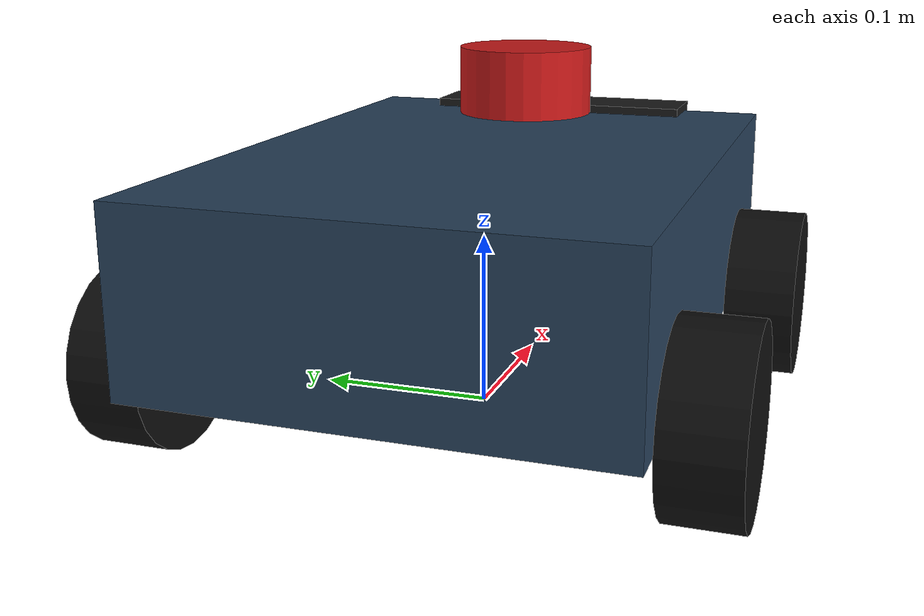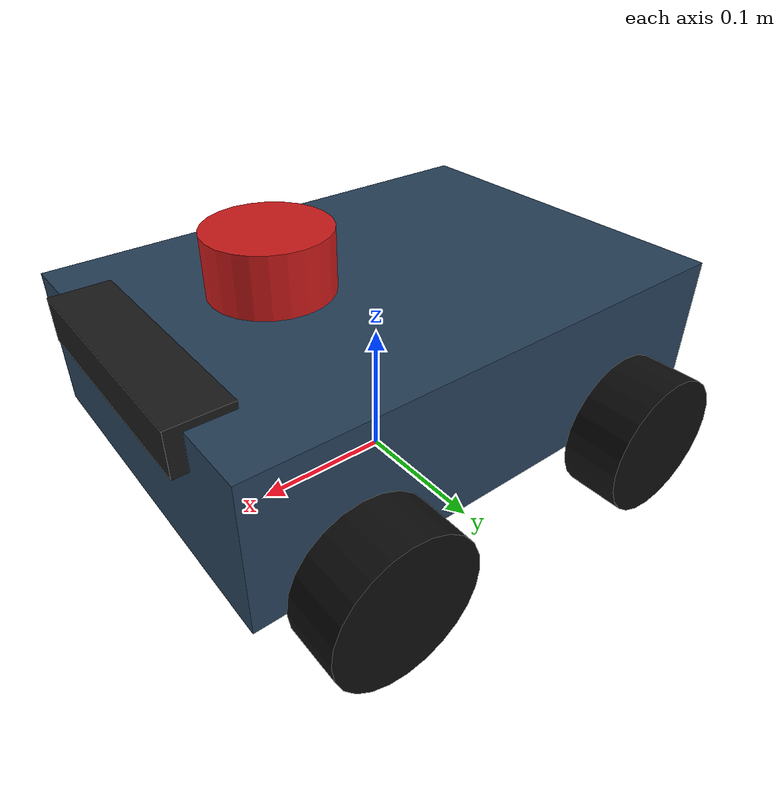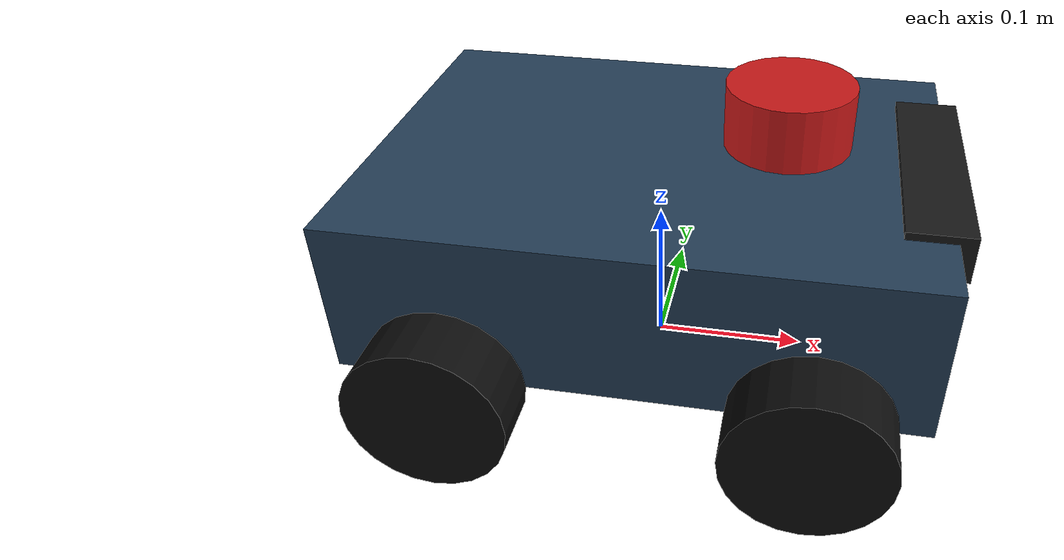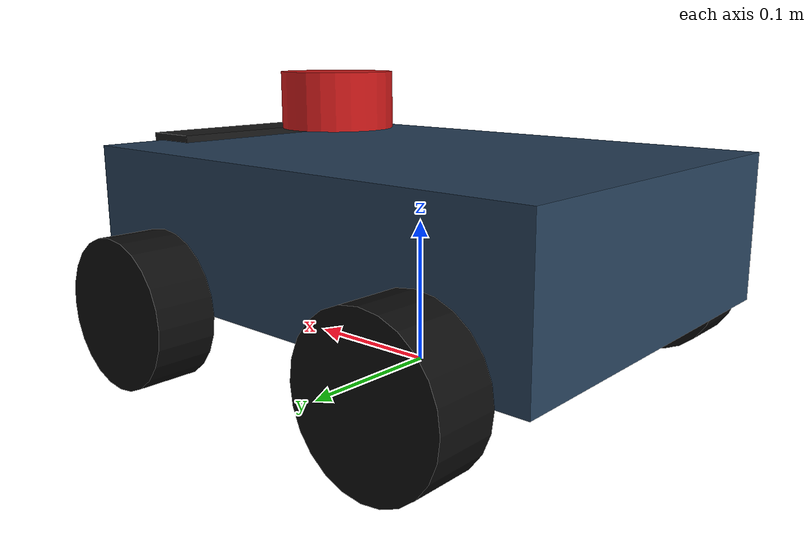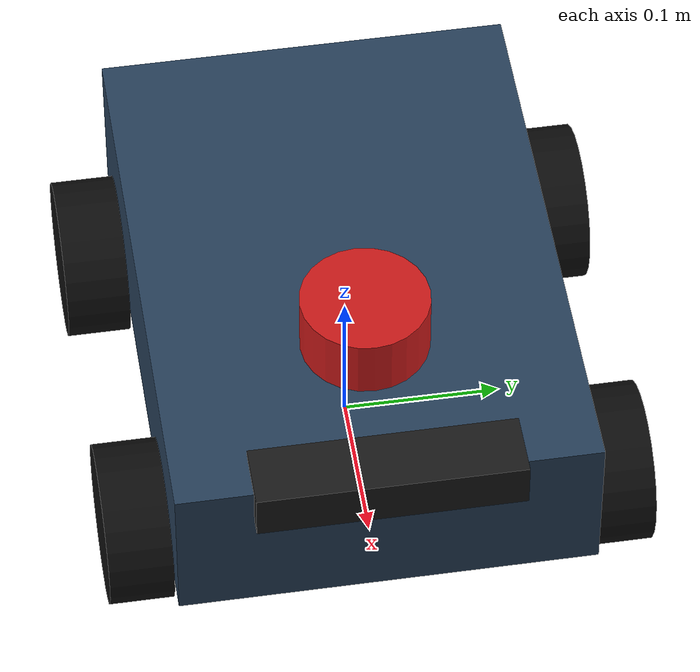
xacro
<?xml version="1.0"?>
<robot xmlns:xacro="http://www.ros.org/wiki/xacro" name="exploration_robot">

  <!-- ================= PROPERTIES ================= -->
  <!-- Dimensi dan massa terinspirasi ROSbot (Bagian 4 Dokumen Perencanaan) -->
  <xacro:property name="chassis_len" value="0.36"/>
  <xacro:property name="chassis_width" value="0.26"/>
  <xacro:property name="chassis_height" value="0.10"/>
  <xacro:property name="chassis_mass" value="3.5"/>

  <xacro:property name="wheel_radius" value="0.05"/>
  <xacro:property name="wheel_width" value="0.04"/>
  <xacro:property name="wheel_mass" value="0.4"/>
  <xacro:property name="wheel_x_offset" value="0.11"/>
  <xacro:property name="wheel_y_offset" value="0.15"/>

  <!-- ================= BASE LINK & FOOTPRINT ================= -->
  <link name="base_footprint"/>

  <joint name="base_footprint_joint" type="fixed">
    <parent link="base_footprint"/>
    <child link="base_link"/>
    <origin xyz="0 0 ${wheel_radius}" rpy="0 0 0"/>
  </joint>

  <link name="base_link">
    <visual>
      <origin xyz="0 0 ${chassis_height/2}" rpy="0 0 0"/>
      <geometry>
        <box size="${chassis_len} ${chassis_width} ${chassis_height}"/>
      </geometry>
      <material name="chassis_mat">
        <color rgba="0.15 0.25 0.35 1.0"/>
      </material>
    </visual>
    <collision>
      <origin xyz="0 0 ${chassis_height/2}" rpy="0 0 0"/>
      <geometry>
        <box size="${chassis_len} ${chassis_width} ${chassis_height}"/>
      </geometry>
    </collision>
    <inertial>
      <origin xyz="0 0 ${chassis_height/2}" rpy="0 0 0"/>
      <mass value="${chassis_mass}"/>
      <inertia ixx="0.022" ixy="0" ixz="0" iyy="0.040" iyz="0" izz="0.057"/>
    </inertial>
  </link>

  <gazebo reference="base_link">
    <material>Gazebo/DarkGrey</material>
  </gazebo>

  <!-- ================= WHEEL MACRO ================= -->
  <xacro:macro name="wheel" params="prefix x_reflect y_reflect">
    <link name="${prefix}_wheel">
      <visual>
        <origin xyz="0 0 0" rpy="${pi/2} 0 0"/>
        <geometry>
          <cylinder radius="${wheel_radius}" length="${wheel_width}"/>
        </geometry>
        <material name="black">
          <color rgba="0.05 0.05 0.05 1.0"/>
        </material>
      </visual>
      <collision>
        <origin xyz="0 0 0" rpy="${pi/2} 0 0"/>
        <geometry>
          <cylinder radius="${wheel_radius}" length="${wheel_width}"/>
        </geometry>
      </collision>
      <inertial>
        <mass value="${wheel_mass}"/>
        <inertia ixx="0.0003" ixy="0" ixz="0" iyy="0.0003" iyz="0" izz="0.0005"/>
      </inertial>
    </link>

    <joint name="${prefix}_wheel_joint" type="continuous">
      <parent link="base_link"/>
      <child link="${prefix}_wheel"/>
      <origin xyz="${x_reflect * wheel_x_offset} ${y_reflect * wheel_y_offset} 0" rpy="0 0 0"/>
      <axis xyz="0 1 0"/>
    </joint>

    <gazebo reference="${prefix}_wheel">
      <material>Gazebo/Black</material>
      <mu1>0.6</mu1>
      <mu2>0.6</mu2>
      <kp>1000000.0</kp>
      <kd>10.0</kd>
      <minDepth>0.001</minDepth>
      <maxVel>0.1</maxVel>
    </gazebo>
  </xacro:macro>

  <xacro:wheel prefix="fl" x_reflect="1" y_reflect="1"/>
  <xacro:wheel prefix="fr" x_reflect="1" y_reflect="-1"/>
  <xacro:wheel prefix="rl" x_reflect="-1" y_reflect="1"/>
  <xacro:wheel prefix="rr" x_reflect="-1" y_reflect="-1"/>

  <!-- ================= SENSOR 1: RPLIDAR A1 (360 LIDAR) ================= -->
  <link name="laser_link">
    <visual>
      <origin xyz="0 0 0" rpy="0 0 0"/>
      <geometry>
        <cylinder radius="0.04" length="0.04"/>
      </geometry>
      <material name="red">
        <color rgba="0.8 0.1 0.1 1.0"/>
      </material>
    </visual>
    <collision>
      <geometry>
        <cylinder radius="0.04" length="0.04"/>
      </geometry>
    </collision>
    <inertial>
      <mass value="0.17"/>
      <inertia ixx="0.0001" ixy="0" ixz="0" iyy="0.0001" iyz="0" izz="0.0001"/>
    </inertial>
  </link>

  <joint name="laser_joint" type="fixed">
    <parent link="base_link"/>
    <child link="laser_link"/>
    <origin xyz="0.08 0 ${chassis_height + 0.03}" rpy="0 0 0"/>
  </joint>

  <gazebo reference="laser_link">
    <material>Gazebo/Red</material>
    <sensor type="ray" name="rplidar_a1">
      <pose>0 0 0 0 0 0</pose>
      <visualize>false</visualize>
      <update_rate>10.0</update_rate>
      <ray>
        <scan>
          <horizontal>
            <samples>360</samples>
            <resolution>1</resolution>
            <min_angle>-3.14159265</min_angle>
            <max_angle>3.14159265</max_angle>
          </horizontal>
        </scan>
        <range>
          <min>0.15</min>
          <max>12.0</max>
          <resolution>0.01</resolution>
        </range>
        <!-- Derau Gaussian realistis sesuai Bagian 4 -->
        <noise>
          <type>gaussian</type>
          <mean>0.0</mean>
          <stddev>0.01</stddev>
        </noise>
      </ray>
      <plugin name="laser_controller" filename="libgazebo_ros_ray_sensor.so">
        <ros>
          <remapping>~/out:=scan</remapping>
        </ros>
        <output_type>sensor_msgs/LaserScan</output_type>
        <frame_name>laser_link</frame_name>
      </plugin>
    </sensor>
  </gazebo>

  <!-- ================= SENSOR 2: ORBBEC ASTRA PRO (RGB-D) ================= -->
  <link name="camera_link">
    <visual>
      <origin xyz="0 0 0" rpy="0 0 0"/>
      <geometry>
        <box size="0.04 0.165 0.03"/>
      </geometry>
      <material name="black">
        <color rgba="0.1 0.1 0.1 1.0"/>
      </material>
    </visual>
    <collision>
      <geometry>
        <box size="0.04 0.165 0.03"/>
      </geometry>
    </collision>
    <inertial>
      <mass value="0.3"/>
      <inertia ixx="0.0001" ixy="0" ixz="0" iyy="0.0001" iyz="0" izz="0.0001"/>
    </inertial>
  </link>

  <joint name="camera_joint" type="fixed">
    <parent link="base_link"/>
    <child link="camera_link"/>
    <origin xyz="${chassis_len/2 - 0.01} 0 ${chassis_height - 0.01}" rpy="0 0 0"/>
  </joint>

  <!-- Optical frame untuk konvensi ROS REP 103 (Z maju, X kanan, Y bawah) -->
  <link name="camera_depth_optical_frame"/>
  <joint name="camera_optical_joint" type="fixed">
    <parent link="camera_link"/>
    <child link="camera_depth_optical_frame"/>
    <origin xyz="0 0 0" rpy="${-pi/2} 0 ${-pi/2}"/>
  </joint>

  <gazebo reference="camera_link">
    <material>Gazebo/Black</material>
    <sensor type="depth" name="astra_pro">
      <update_rate>30.0</update_rate>
      <camera>
        <!-- Horizontal FOV 87 derajat = 1.5184 rad sesuai Bagian 4 -->
        <horizontal_fov>1.518436</horizontal_fov>
        <image>
          <width>640</width>
          <height>480</height>
          <format>R8G8B8</format>
        </image>
        <clip>
          <!-- Jangkauan depth 0.3 s.d 6.0 m -->
          <near>0.3</near>
          <far>6.0</far>
        </clip>
        <noise>
          <type>gaussian</type>
          <mean>0.0</mean>
          <stddev>0.005</stddev>
        </noise>
      </camera>
      <plugin name="camera_controller" filename="libgazebo_ros_camera.so">
        <ros>
          <remapping>camera/image_raw:=camera/image_raw</remapping>
          <remapping>camera/depth/image_raw:=camera/depth/image_raw</remapping>
          <remapping>camera/camera_info:=camera/camera_info</remapping>
          <remapping>camera/depth/camera_info:=camera/depth/camera_info</remapping>
          <remapping>camera/points:=camera/points</remapping>
        </ros>
        <camera_name>camera</camera_name>
        <frame_name>camera_depth_optical_frame</frame_name>
        <hack_baseline>0.075</hack_baseline>
        <min_depth>0.3</min_depth>
        <max_depth>6.0</max_depth>
      </plugin>
    </sensor>
  </gazebo>

  <!-- ================= SENSOR 3: IMU (6/9 SUMBU DENGAN DERAU REALISTIS) ================= -->
  <link name="imu_link">
    <visual>
      <origin xyz="0 0 0" rpy="0 0 0"/>
      <geometry>
        <box size="0.02 0.02 0.008"/>
      </geometry>
      <material name="blue">
        <color rgba="0.1 0.2 0.8 1.0"/>
      </material>
    </visual>
    <collision>
      <geometry>
        <box size="0.02 0.02 0.008"/>
      </geometry>
    </collision>
    <inertial>
      <mass value="0.01"/>
      <inertia ixx="0.00001" ixy="0" ixz="0" iyy="0.00001" iyz="0" izz="0.00001"/>
    </inertial>
  </link>

  <joint name="imu_joint" type="fixed">
    <parent link="base_link"/>
    <child link="imu_link"/>
    <origin xyz="0 0 ${chassis_height/2}" rpy="0 0 0"/>
  </joint>

  <gazebo reference="imu_link">
    <material>Gazebo/Blue</material>
    <sensor name="imu_sensor" type="imu">
      <always_on>true</always_on>
      <update_rate>100.0</update_rate>
      <visualize>false</visualize>
      <imu>
        <angular_velocity>
          <x><noise type="gaussian"><mean>0.0</mean><stddev>2e-4</stddev></noise></x>
          <y><noise type="gaussian"><mean>0.0</mean><stddev>2e-4</stddev></noise></y>
          <z><noise type="gaussian"><mean>0.0</mean><stddev>2e-4</stddev></noise></z>
        </angular_velocity>
        <linear_acceleration>
          <x><noise type="gaussian"><mean>0.0</mean><stddev>1.7e-2</stddev></noise></x>
          <y><noise type="gaussian"><mean>0.0</mean><stddev>1.7e-2</stddev></noise></y>
          <z><noise type="gaussian"><mean>0.0</mean><stddev>1.7e-2</stddev></noise></z>
        </linear_acceleration>
      </imu>
      <plugin name="imu_controller" filename="libgazebo_ros_imu_sensor.so">
        <ros>
          <namespace>/</namespace>
          <remapping>~/out:=imu/data</remapping>
        </ros>
        <initial_orientation_as_reference>false</initial_orientation_as_reference>
        <frame_name>imu_link</frame_name>
      </plugin>
    </sensor>
  </gazebo>

  <!-- ================= 4WD SKID-STEER GAZEBO CONTROLLER ================= -->
  <gazebo>
    <plugin name="skid_steer_drive" filename="libgazebo_ros_diff_drive.so">
      <ros>
        <namespace>/</namespace>
        <remapping>cmd_vel:=cmd_vel_pid</remapping>
        <remapping>odom:=odom</remapping>
      </ros>

      <!-- 4 Wheels configured as 2 pairs -->
      <num_wheel_pairs>2</num_wheel_pairs>

      <!-- Front Pair -->
      <left_joint>fl_wheel_joint</left_joint>
      <right_joint>fr_wheel_joint</right_joint>
      <wheel_separation>0.33</wheel_separation>
      <wheel_diameter>${wheel_radius * 2}</wheel_diameter>

      <!-- Rear Pair -->
      <left_joint>rl_wheel_joint</left_joint>
      <right_joint>rr_wheel_joint</right_joint>
      <wheel_separation>0.33</wheel_separation>
      <wheel_diameter>${wheel_radius * 2}</wheel_diameter>

      <max_wheel_torque>25.0</max_wheel_torque>
      <max_wheel_acceleration>2.5</max_wheel_acceleration>

      <publish_odom>true</publish_odom>
      <publish_odom_tf>true</publish_odom_tf>
      <publish_wheel_tf>false</publish_wheel_tf>

      <odometry_frame>odom</odometry_frame>
      <robot_base_frame>base_footprint</robot_base_frame>
      <!-- Menambahkan sedikit covariance untuk merefleksikan slip encoder -->
      <covariance_x>0.001</covariance_x>
      <covariance_y>0.001</covariance_y>
      <covariance_yaw>0.01</covariance_yaw>
    </plugin>
  </gazebo>

  <!-- ================= GROUND TRUTH POSE PUBLISHER (UNTUK EVALUASI ATE) ================= -->
  <!-- Menyediakan ground truth pose absolut dari simulator Gazebo (Bagian 7 Dokumen) -->
  <gazebo>
    <plugin name="ground_truth_p3d" filename="libgazebo_ros_p3d.so">
      <ros>
        <namespace>/</namespace>
        <remapping>odom:=ground_truth/odom</remapping>
      </ros>
      <body_name>base_footprint</body_name>
      <frame_name>world</frame_name>
      <update_rate>30.0</update_rate>
      <xyz_offset>0 0 0</xyz_offset>
      <rpy_offset>0 0 0</rpy_offset>
      <gaussian_noise>0.0</gaussian_noise>
    </plugin>
  </gazebo>

</robot>
